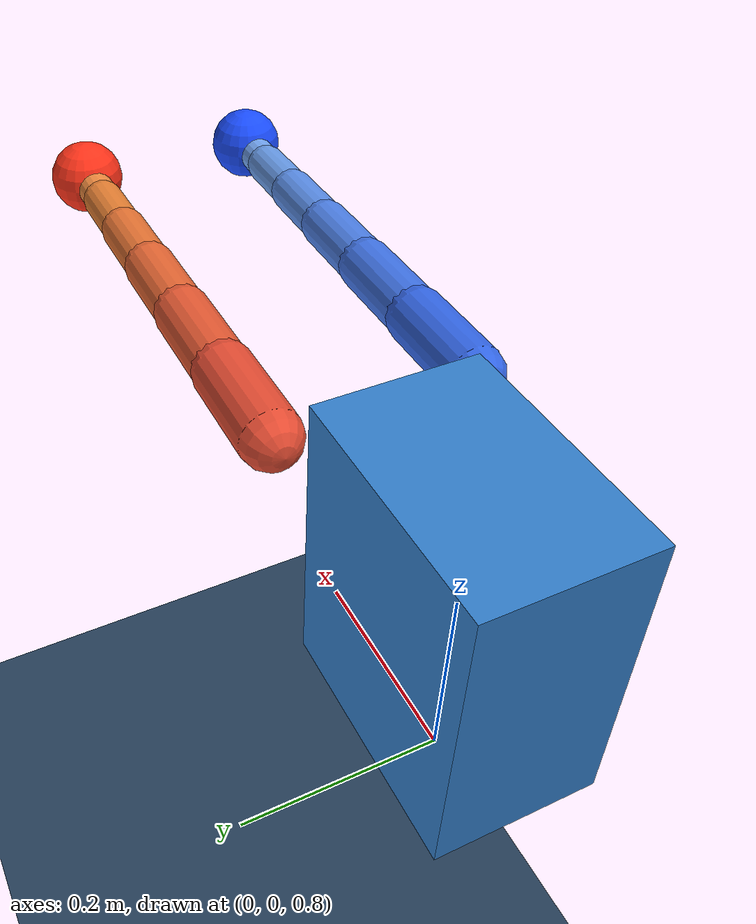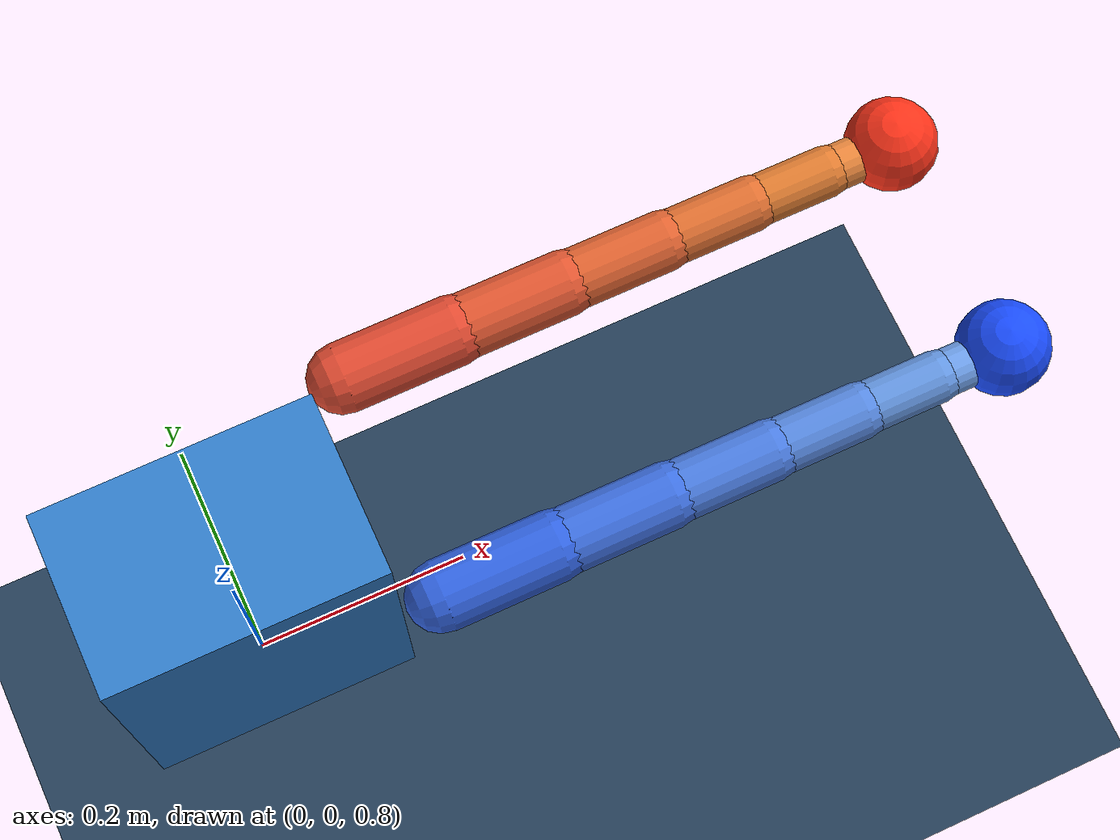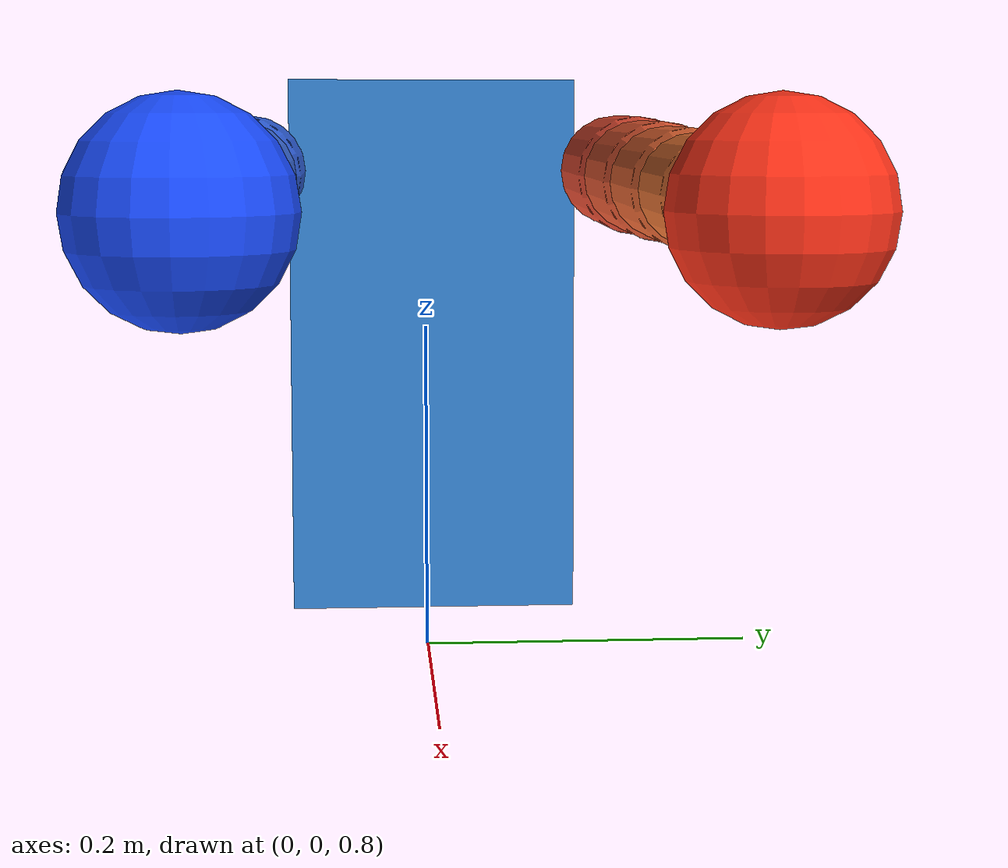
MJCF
<mujoco model="genie_g1_arm14_proxy">
  <!-- Kinematic-only proxy: 14 hinge joints in HAL order (left7 then right7).
       For real Genie G01 appearance/meshes, replace with vendor MJCF and update joint_names_14.txt. -->
  <compiler angle="radian" autolimits="true"/>
  <option gravity="0 0 -9.81" integrator="implicitfast"/>
  <visual>
    <global offwidth="1024" offheight="768"/>
  </visual>
  <asset>
    <texture name="grid" type="2d" builtin="checker" width="512" height="512" rgb1=".1 .2 .3" rgb2=".2 .3 .4"/>
    <material name="grid" texture="grid" texrepeat="8 8" reflectance="0.1"/>
  </asset>
  <worldbody>
    <light pos="0 0 3" dir="0 0 -1" diffuse="0.8 0.8 0.8"/>
    <geom name="floor" type="plane" size="3 3 0.01" material="grid"/>
    <body name="torso" pos="0 0 1.0">
      <geom type="box" size="0.12 0.08 0.15" rgba="0.2 0.5 0.8 1" mass="5"/>
      <body name="l0" pos="0.15 0.1 0.1">
        <joint name="g1_hal_joint_00" type="hinge" axis="0 0 1" limited="true" range="-3.14 3.14" damping="0.5"/>
        <geom type="capsule" fromto="0 0 0 0.1 0 0" size="0.03" rgba="0.9 0.3 0.2 1"/>
        <body name="l1" pos="0.1 0 0">
          <joint name="g1_hal_joint_01" type="hinge" axis="0 1 0" limited="true" range="-3.14 3.14" damping="0.5"/>
          <geom type="capsule" fromto="0 0 0 0.1 0 0" size="0.028" rgba="0.9 0.35 0.2 1"/>
          <body name="l2" pos="0.1 0 0">
            <joint name="g1_hal_joint_02" type="hinge" axis="0 0 1" limited="true" range="-3.14 3.14" damping="0.5"/>
            <geom type="capsule" fromto="0 0 0 0.09 0 0" size="0.026" rgba="0.9 0.4 0.2 1"/>
            <body name="l3" pos="0.09 0 0">
              <joint name="g1_hal_joint_03" type="hinge" axis="0 1 0" limited="true" range="-3.14 3.14" damping="0.5"/>
              <geom type="capsule" fromto="0 0 0 0.08 0 0" size="0.024" rgba="0.9 0.45 0.2 1"/>
              <body name="l4" pos="0.08 0 0">
                <joint name="g1_hal_joint_04" type="hinge" axis="0 0 1" limited="true" range="-3.14 3.14" damping="0.5"/>
                <geom type="capsule" fromto="0 0 0 0.07 0 0" size="0.022" rgba="0.9 0.5 0.2 1"/>
                <body name="l5" pos="0.07 0 0">
                  <joint name="g1_hal_joint_05" type="hinge" axis="0 1 0" limited="true" range="-3.14 3.14" damping="0.5"/>
                  <geom type="capsule" fromto="0 0 0 0.06 0 0" size="0.02" rgba="0.95 0.55 0.25 1"/>
                  <body name="l6" pos="0.06 0 0">
                    <joint name="g1_hal_joint_06" type="hinge" axis="0 0 1" limited="true" range="-3.14 3.14" damping="0.5"/>
                    <geom type="sphere" size="0.04" rgba="1 0.2 0.1 1"/>
                  </body>
                </body>
              </body>
            </body>
          </body>
        </body>
      </body>
      <body name="r0" pos="0.15 -0.1 0.1">
        <joint name="g1_hal_joint_07" type="hinge" axis="0 0 1" limited="true" range="-3.14 3.14" damping="0.5"/>
        <geom type="capsule" fromto="0 0 0 0.1 0 0" size="0.03" rgba="0.2 0.4 0.9 1"/>
        <body name="r1" pos="0.1 0 0">
          <joint name="g1_hal_joint_08" type="hinge" axis="0 1 0" limited="true" range="-3.14 3.14" damping="0.5"/>
          <geom type="capsule" fromto="0 0 0 0.1 0 0" size="0.028" rgba="0.25 0.45 0.9 1"/>
          <body name="r2" pos="0.1 0 0">
            <joint name="g1_hal_joint_09" type="hinge" axis="0 0 1" limited="true" range="-3.14 3.14" damping="0.5"/>
            <geom type="capsule" fromto="0 0 0 0.09 0 0" size="0.026" rgba="0.3 0.5 0.9 1"/>
            <body name="r3" pos="0.09 0 0">
              <joint name="g1_hal_joint_10" type="hinge" axis="0 1 0" limited="true" range="-3.14 3.14" damping="0.5"/>
              <geom type="capsule" fromto="0 0 0 0.08 0 0" size="0.024" rgba="0.35 0.55 0.9 1"/>
              <body name="r4" pos="0.08 0 0">
                <joint name="g1_hal_joint_11" type="hinge" axis="0 0 1" limited="true" range="-3.14 3.14" damping="0.5"/>
                <geom type="capsule" fromto="0 0 0 0.07 0 0" size="0.022" rgba="0.4 0.6 0.9 1"/>
                <body name="r5" pos="0.07 0 0">
                  <joint name="g1_hal_joint_12" type="hinge" axis="0 1 0" limited="true" range="-3.14 3.14" damping="0.5"/>
                  <geom type="capsule" fromto="0 0 0 0.06 0 0" size="0.02" rgba="0.45 0.65 0.95 1"/>
                  <body name="r6" pos="0.06 0 0">
                    <joint name="g1_hal_joint_13" type="hinge" axis="0 0 1" limited="true" range="-3.14 3.14" damping="0.5"/>
                    <geom type="sphere" size="0.04" rgba="0.1 0.3 1 1"/>
                  </body>
                </body>
              </body>
            </body>
          </body>
        </body>
      </body>
    </body>
  </worldbody>
</mujoco>
